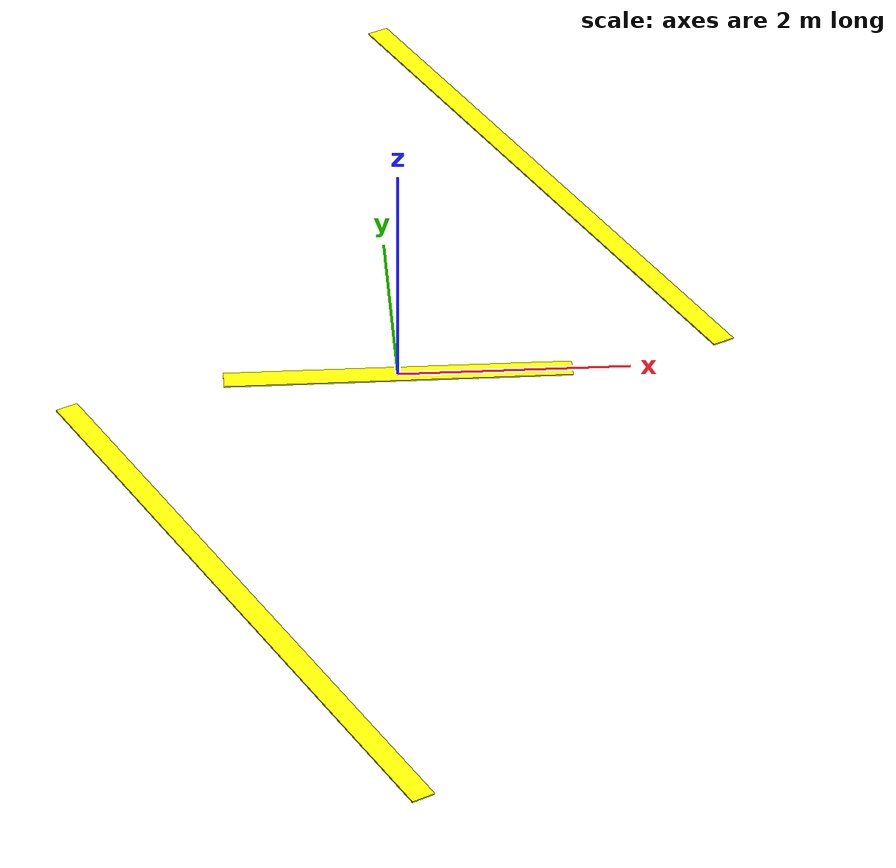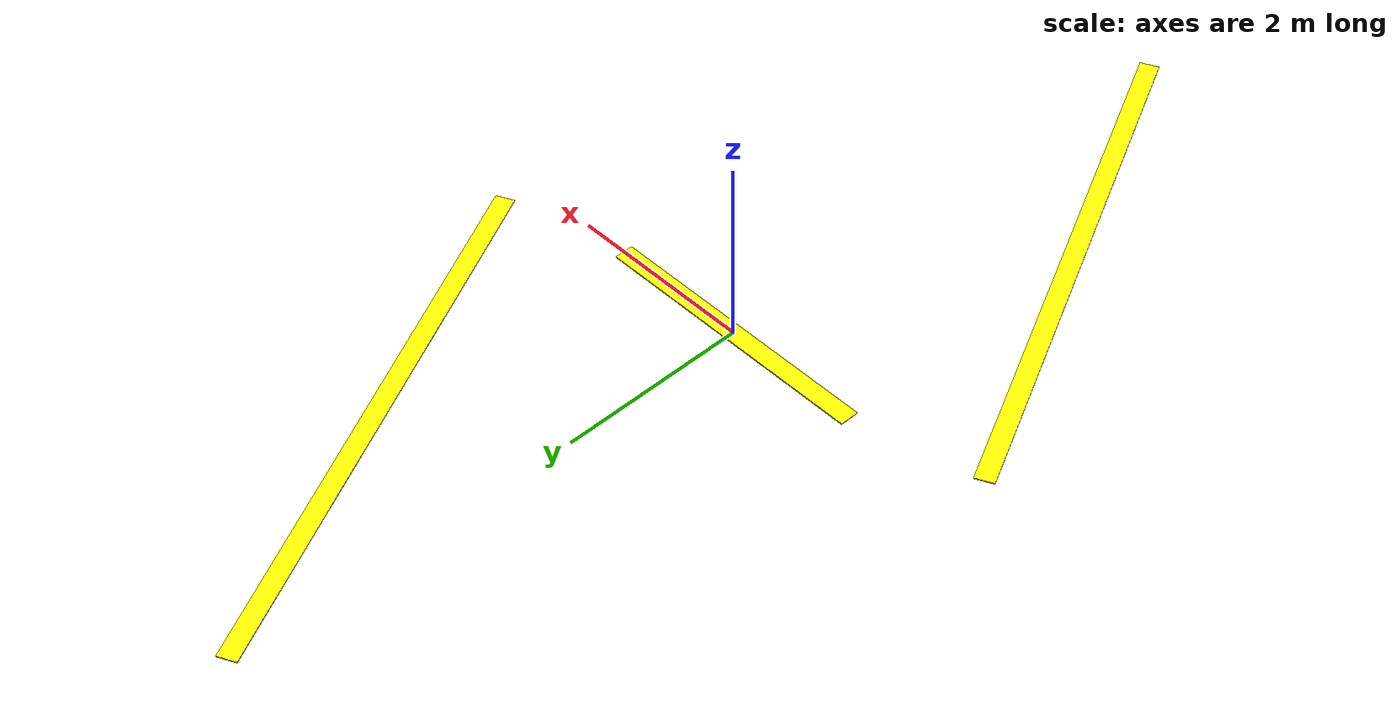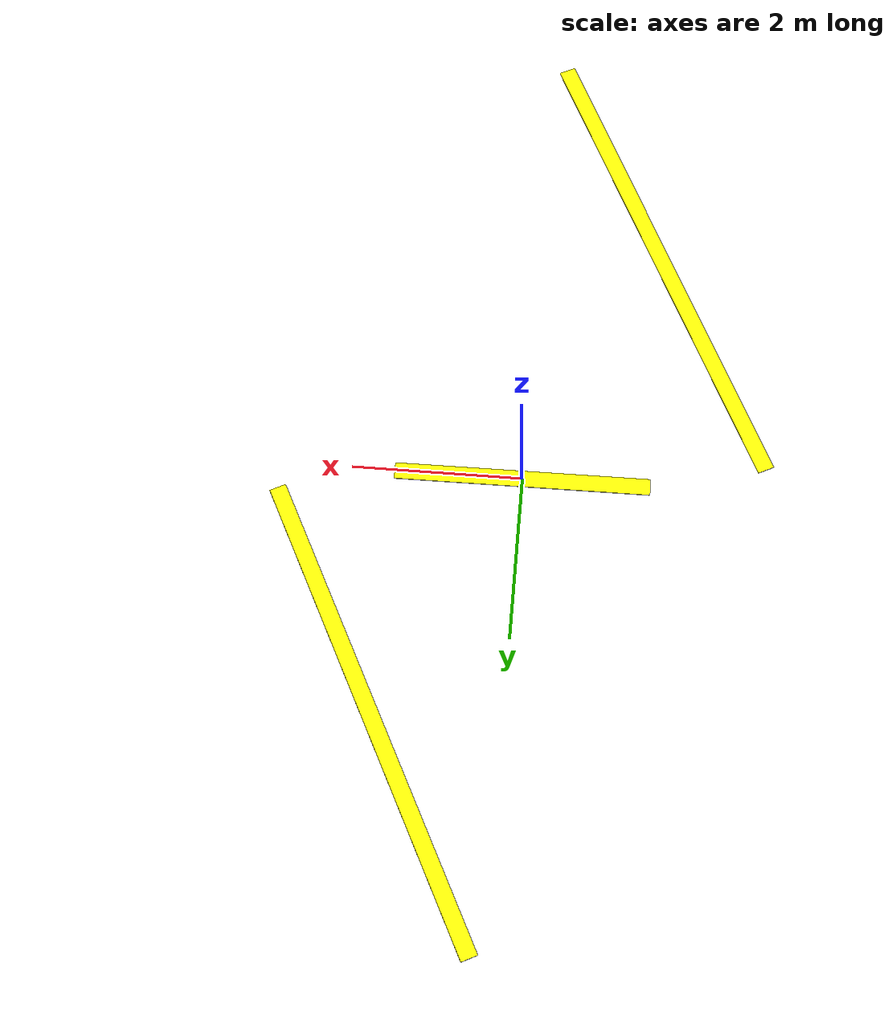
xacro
<?xml version="1.0"?>

<robot name="lane_mark" xmlns:xacro="http://www.ros.org/wiki/xacro" >

  <link name="lane_left" >
    <visual>
      <geometry>
        <box size="6 0.2 0.01" />
      </geometry>
      <material name="yellow" >
        <color rgba="255 255 0 1" />
      </material>
    </visual>
  </link>

  <link name="lane_right" >
    <visual>
      <geometry>
        <box size="6 0.2 0.01" />
      </geometry>
      <material name="yellow" >
        <color rgba="255 255 0 1" />
      </material>
    </visual>
  </link>

  <link name="lane_middle" >
    <visual>
      <geometry>
        <box size="3 0.2 0.01" />
      </geometry>
      <material name="yellow" >
        <color rgba="255 255 0 1" />
      </material>
    </visual>
  </link>

  <joint name="joint_left" type="fixed" >
    <parent link="lane_middle" />
    <child link="lane_left" />
    <origin xyz="1.5 3 0" rpy="0 0 90" />
  </joint>

  <joint name="joint_right" type="fixed" >
    <parent link="lane_middle" />
    <child link="lane_right" />
    <origin xyz="-1.5 -3 0" rpy="0 0 90" />
  </joint>

</robot>
